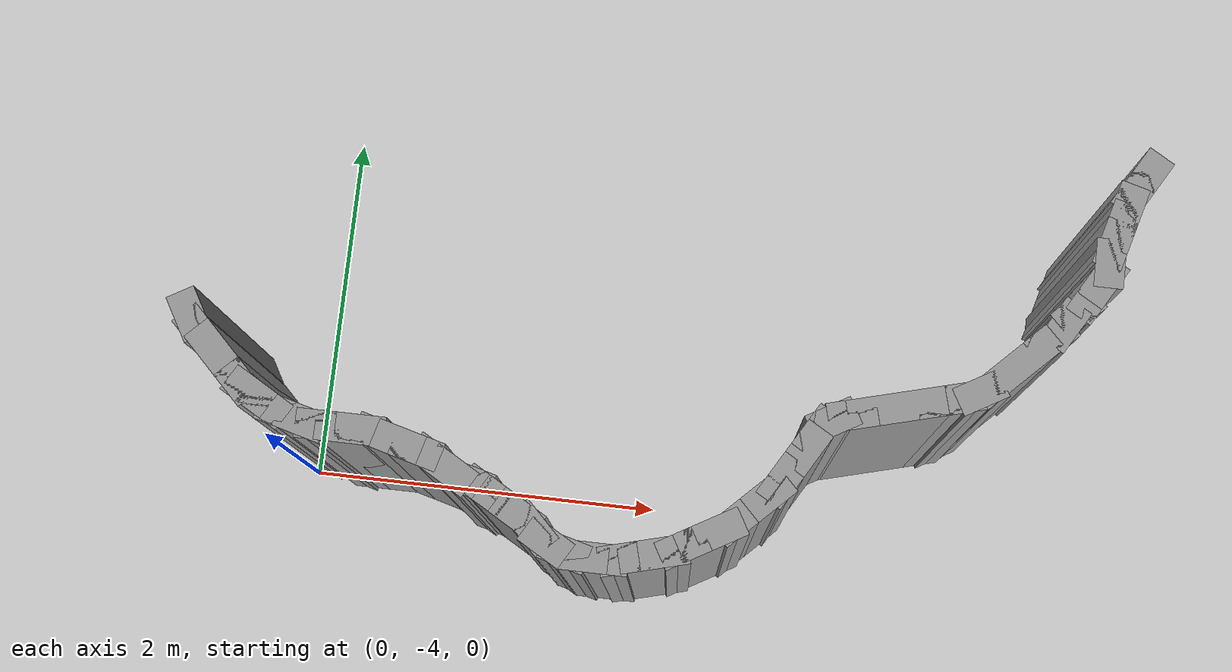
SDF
<sdf version="1.7">
 <world name="default">
  <model name="ground_plane">
   <static>1</static>
   <link name="link">
    <collision name="collision">
     <geometry><plane><normal>0 0 1</normal><size>100 100</size></plane></geometry>
     <surface>
      <contact><collide_bitmask>65535</collide_bitmask></contact>
      <friction><ode><mu>100</mu><mu2>50</mu2></ode></friction>
     </surface>
    </collision>
    <visual name="visual">
     <cast_shadows>0</cast_shadows>
     <geometry><plane><normal>0 0 1</normal><size>100 100</size></plane></geometry>
     <material>
      <script><uri>file://media/materials/scripts/gazebo.material</uri><name>Gazebo/Grey</name></script>
     </material>
    </visual>
   </link>
  </model>
  <model name="pool11">
   <pose>1.69068 -1.09805 0 0 -0 0</pose>
   <link name="Wall_100">
    <collision name="Wall_100_Collision">
     <geometry><box><size>0.25 0.15 2.5</size></box></geometry>
     <pose>0 0 1.25 0 -0 0</pose>
    </collision>
    <visual name="Wall_100_Visual">
     <pose>0 0 1.25 0 -0 0</pose>
     <geometry><box><size>0.25 0.15 2.5</size></box></geometry>
     <material>
      <script><uri>file://media/materials/scripts/gazebo.material</uri><name>Gazebo/Grey</name></script>
      <ambient>1 1 1 1</ambient>
     </material>
     <meta><layer>0</layer></meta>
    </visual>
    <pose>2.29035 -1.96159 0 0 -0 1.0472</pose>
   </link>
   <link name="Wall_101">
    <collision name="Wall_101_Collision">
     <geometry><box><size>0.25 0.15 2.5</size></box></geometry>
     <pose>0 0 1.25 0 -0 0</pose>
    </collision>
    <visual name="Wall_101_Visual">
     <pose>0 0 1.25 0 -0 0</pose>
     <geometry><box><size>0.25 0.15 2.5</size></box></geometry>
     <material>
      <script><uri>file://media/materials/scripts/gazebo.material</uri><name>Gazebo/Grey</name></script>
      <ambient>1 1 1 1</ambient>
     </material>
     <meta><layer>0</layer></meta>
    </visual>
    <pose>2.35071 -1.88293 0 0 -0 0.785398</pose>
   </link>
   <link name="Wall_102">
    <collision name="Wall_102_Collision">
     <geometry><box><size>0.25 0.15 2.5</size></box></geometry>
     <pose>0 0 1.25 0 -0 0</pose>
    </collision>
    <visual name="Wall_102_Visual">
     <pose>0 0 1.25 0 -0 0</pose>
     <geometry><box><size>0.25 0.15 2.5</size></box></geometry>
     <material>
      <script><uri>file://media/materials/scripts/gazebo.material</uri><name>Gazebo/Grey</name></script>
      <ambient>1 1 1 1</ambient>
     </material>
     <meta><layer>0</layer></meta>
    </visual>
    <pose>2.41106 -1.80428 0 0 -0 1.0472</pose>
   </link>
   <link name="Wall_103">
    <collision name="Wall_103_Collision">
     <geometry><box><size>0.25 0.15 2.5</size></box></geometry>
     <pose>0 0 1.25 0 -0 0</pose>
    </collision>
    <visual name="Wall_103_Visual">
     <pose>0 0 1.25 0 -0 0</pose>
     <geometry><box><size>0.25 0.15 2.5</size></box></geometry>
     <material>
      <script><uri>file://media/materials/scripts/gazebo.material</uri><name>Gazebo/Grey</name></script>
      <ambient>1 1 1 1</ambient>
     </material>
     <meta><layer>0</layer></meta>
    </visual>
    <pose>2.46106 -1.71768 0 0 -0 1.0472</pose>
   </link>
   <link name="Wall_104">
    <collision name="Wall_104_Collision">
     <geometry><box><size>0.25 0.15 2.5</size></box></geometry>
     <pose>0 0 1.25 0 -0 0</pose>
    </collision>
    <visual name="Wall_104_Visual">
     <pose>0 0 1.25 0 -0 0</pose>
     <geometry><box><size>0.25 0.15 2.5</size></box></geometry>
     <material>
      <script><uri>file://media/materials/scripts/gazebo.material</uri><name>Gazebo/Grey</name></script>
      <ambient>1 1 1 1</ambient>
     </material>
     <meta><layer>0</layer></meta>
    </visual>
    <pose>2.48606 -1.62437 0 0 -0 1.5708</pose>
   </link>
   <link name="Wall_105">
    <collision name="Wall_105_Collision">
     <geometry><box><size>0.25 0.15 2.5</size></box></geometry>
     <pose>0 0 1.25 0 -0 0</pose>
    </collision>
    <visual name="Wall_105_Visual">
     <pose>0 0 1.25 0 -0 0</pose>
     <geometry><box><size>0.25 0.15 2.5</size></box></geometry>
     <material>
      <script><uri>file://media/materials/scripts/gazebo.material</uri><name>Gazebo/Grey</name></script>
      <ambient>1 1 1 1</ambient>
     </material>
     <meta><layer>0</layer></meta>
    </visual>
    <pose>2.499 -1.52608 0 0 -0 1.309</pose>
   </link>
   <link name="Wall_106">
    <collision name="Wall_106_Collision">
     <geometry><box><size>0.25 0.15 2.5</size></box></geometry>
     <pose>0 0 1.25 0 -0 0</pose>
    </collision>
    <visual name="Wall_106_Visual">
     <pose>0 0 1.25 0 -0 0</pose>
     <geometry><box><size>0.25 0.15 2.5</size></box></geometry>
     <material>
      <script><uri>file://media/materials/scripts/gazebo.material</uri><name>Gazebo/Grey</name></script>
      <ambient>1 1 1 1</ambient>
     </material>
     <meta><layer>0</layer></meta>
    </visual>
    <pose>2.52489 -1.42948 0 0 -0 1.309</pose>
   </link>
   <link name="Wall_107">
    <collision name="Wall_107_Collision">
     <geometry><box><size>0.25 0.15 2.5</size></box></geometry>
     <pose>0 0 1.25 0 -0 0</pose>
    </collision>
    <visual name="Wall_107_Visual">
     <pose>0 0 1.25 0 -0 0</pose>
     <geometry><box><size>0.25 0.15 2.5</size></box></geometry>
     <material>
      <script><uri>file://media/materials/scripts/gazebo.material</uri><name>Gazebo/Grey</name></script>
      <ambient>1 1 1 1</ambient>
     </material>
     <meta><layer>0</layer></meta>
    </visual>
    <pose>2.55077 -1.33289 0 0 -0 1.309</pose>
   </link>
   <link name="Wall_108">
    <collision name="Wall_108_Collision">
     <geometry><box><size>0.25 0.15 2.5</size></box></geometry>
     <pose>0 0 1.25 0 -0 0</pose>
    </collision>
    <visual name="Wall_108_Visual">
     <pose>0 0 1.25 0 -0 0</pose>
     <geometry><box><size>0.25 0.15 2.5</size></box></geometry>
     <material>
      <script><uri>file://media/materials/scripts/gazebo.material</uri><name>Gazebo/Grey</name></script>
      <ambient>1 1 1 1</ambient>
     </material>
     <meta><layer>0</layer></meta>
    </visual>
    <pose>2.58871 -1.24129 0 0 -0 1.0472</pose>
   </link>
   <link name="Wall_109">
    <collision name="Wall_109_Collision">
     <geometry><box><size>0.25 0.15 2.5</size></box></geometry>
     <pose>0 0 1.25 0 -0 0</pose>
    </collision>
    <visual name="Wall_109_Visual">
     <pose>0 0 1.25 0 -0 0</pose>
     <geometry><box><size>0.25 0.15 2.5</size></box></geometry>
     <material>
      <script><uri>file://media/materials/scripts/gazebo.material</uri><name>Gazebo/Grey</name></script>
      <ambient>1 1 1 1</ambient>
     </material>
     <meta><layer>0</layer></meta>
    </visual>
    <pose>2.63871 -1.15469 0 0 -0 1.0472</pose>
   </link>
   <link name="Wall_53">
    <collision name="Wall_53_Collision">
     <geometry><box><size>0.25 0.15 2.5</size></box></geometry>
     <pose>0 0 1.25 0 -0 0</pose>
    </collision>
    <visual name="Wall_53_Visual">
     <pose>0 0 1.25 0 -0 0</pose>
     <geometry><box><size>0.25 0.15 2.5</size></box></geometry>
     <material>
      <script><uri>file://media/materials/scripts/gazebo.material</uri><name>Gazebo/Grey</name></script>
      <ambient>1 1 1 1</ambient>
     </material>
     <meta><layer>0</layer></meta>
    </visual>
    <pose>-2.06314 -2.39948 0 0 -0 -1.0472</pose>
   </link>
   <link name="Wall_54">
    <collision name="Wall_54_Collision">
     <geometry><box><size>0.25 0.15 2.5</size></box></geometry>
     <pose>0 0 1.25 0 -0 0</pose>
    </collision>
    <visual name="Wall_54_Visual">
     <pose>0 0 1.25 0 -0 0</pose>
     <geometry><box><size>0.25 0.15 2.5</size></box></geometry>
     <material>
      <script><uri>file://media/materials/scripts/gazebo.material</uri><name>Gazebo/Grey</name></script>
      <ambient>1 1 1 1</ambient>
     </material>
     <meta><layer>0</layer></meta>
    </visual>
    <pose>-2.00278 -2.47814 0 0 -0 -0.785398</pose>
   </link>
   <link name="Wall_55">
    <collision name="Wall_55_Collision">
     <geometry><box><size>0.25 0.15 2.5</size></box></geometry>
     <pose>0 0 1.25 0 -0 0</pose>
    </collision>
    <visual name="Wall_55_Visual">
     <pose>0 0 1.25 0 -0 0</pose>
     <geometry><box><size>0.25 0.15 2.5</size></box></geometry>
     <material>
      <script><uri>file://media/materials/scripts/gazebo.material</uri><name>Gazebo/Grey</name></script>
      <ambient>1 1 1 1</ambient>
     </material>
     <meta><layer>0</layer></meta>
    </visual>
    <pose>-1.93207 -2.54885 0 0 -0 -0.785398</pose>
   </link>
   <link name="Wall_56">
    <collision name="Wall_56_Collision">
     <geometry><box><size>0.25 0.15 2.5</size></box></geometry>
     <pose>0 0 1.25 0 -0 0</pose>
    </collision>
    <visual name="Wall_56_Visual">
     <pose>0 0 1.25 0 -0 0</pose>
     <geometry><box><size>0.25 0.15 2.5</size></box></geometry>
     <material>
      <script><uri>file://media/materials/scripts/gazebo.material</uri><name>Gazebo/Grey</name></script>
      <ambient>1 1 1 1</ambient>
     </material>
     <meta><layer>0</layer></meta>
    </visual>
    <pose>-1.86136 -2.61956 0 0 -0 -0.785398</pose>
   </link>
   <link name="Wall_57">
    <collision name="Wall_57_Collision">
     <geometry><box><size>0.25 0.15 2.5</size></box></geometry>
     <pose>0 0 1.25 0 -0 0</pose>
    </collision>
    <visual name="Wall_57_Visual">
     <pose>0 0 1.25 0 -0 0</pose>
     <geometry><box><size>0.25 0.15 2.5</size></box></geometry>
     <material>
      <script><uri>file://media/materials/scripts/gazebo.material</uri><name>Gazebo/Grey</name></script>
      <ambient>1 1 1 1</ambient>
     </material>
     <meta><layer>0</layer></meta>
    </visual>
    <pose>-1.79065 -2.69027 0 0 -0 -0.785398</pose>
   </link>
   <link name="Wall_58">
    <collision name="Wall_58_Collision">
     <geometry><box><size>0.25 0.15 2.5</size></box></geometry>
     <pose>0 0 1.25 0 -0 0</pose>
    </collision>
    <visual name="Wall_58_Visual">
     <pose>0 0 1.25 0 -0 0</pose>
     <geometry><box><size>0.25 0.15 2.5</size></box></geometry>
     <material>
      <script><uri>file://media/materials/scripts/gazebo.material</uri><name>Gazebo/Grey</name></script>
      <ambient>1 1 1 1</ambient>
     </material>
     <meta><layer>0</layer></meta>
    </visual>
    <pose>-1.712 -2.75063 0 0 -0 -0.523599</pose>
   </link>
   <link name="Wall_59">
    <collision name="Wall_59_Collision">
     <geometry><box><size>0.25 0.15 2.5</size></box></geometry>
     <pose>0 0 1.25 0 -0 0</pose>
    </collision>
    <visual name="Wall_59_Visual">
     <pose>0 0 1.25 0 -0 0</pose>
     <geometry><box><size>0.25 0.15 2.5</size></box></geometry>
     <material>
      <script><uri>file://media/materials/scripts/gazebo.material</uri><name>Gazebo/Grey</name></script>
      <ambient>1 1 1 1</ambient>
     </material>
     <meta><layer>0</layer></meta>
    </visual>
    <pose>-1.62539 -2.80063 0 0 -0 -0.523599</pose>
   </link>
   <link name="Wall_60">
    <collision name="Wall_60_Collision">
     <geometry><box><size>0.25 0.15 2.5</size></box></geometry>
     <pose>0 0 1.25 0 -0 0</pose>
    </collision>
    <visual name="Wall_60_Visual">
     <pose>0 0 1.25 0 -0 0</pose>
     <geometry><box><size>0.25 0.15 2.5</size></box></geometry>
     <material>
      <script><uri>file://media/materials/scripts/gazebo.material</uri><name>Gazebo/Grey</name></script>
      <ambient>1 1 1 1</ambient>
     </material>
     <meta><layer>0</layer></meta>
    </visual>
    <pose>-1.5338 -2.83857 0 0 -0 -0.261799</pose>
   </link>
   <link name="Wall_61">
    <collision name="Wall_61_Collision">
     <geometry><box><size>0.25 0.15 2.5</size></box></geometry>
     <pose>0 0 1.25 0 -0 0</pose>
    </collision>
    <visual name="Wall_61_Visual">
     <pose>0 0 1.25 0 -0 0</pose>
     <geometry><box><size>0.25 0.15 2.5</size></box></geometry>
     <material>
      <script><uri>file://media/materials/scripts/gazebo.material</uri><name>Gazebo/Grey</name></script>
      <ambient>1 1 1 1</ambient>
     </material>
     <meta><layer>0</layer></meta>
    </visual>
    <pose>-1.4372 -2.86445 0 0 -0 -0.261799</pose>
   </link>
   <link name="Wall_62">
    <collision name="Wall_62_Collision">
     <geometry><box><size>0.25 0.15 2.5</size></box></geometry>
     <pose>0 0 1.25 0 -0 0</pose>
    </collision>
    <visual name="Wall_62_Visual">
     <pose>0 0 1.25 0 -0 0</pose>
     <geometry><box><size>0.25 0.15 2.5</size></box></geometry>
     <material>
      <script><uri>file://media/materials/scripts/gazebo.material</uri><name>Gazebo/Grey</name></script>
      <ambient>1 1 1 1</ambient>
     </material>
     <meta><layer>0</layer></meta>
    </visual>
    <pose>-1.33891 -2.87739 0 0 -0 0</pose>
   </link>
   <link name="Wall_63">
    <collision name="Wall_63_Collision">
     <geometry><box><size>0.25 0.15 2.5</size></box></geometry>
     <pose>0 0 1.25 0 -0 0</pose>
    </collision>
    <visual name="Wall_63_Visual">
     <pose>0 0 1.25 0 -0 0</pose>
     <geometry><box><size>0.25 0.15 2.5</size></box></geometry>
     <material>
      <script><uri>file://media/materials/scripts/gazebo.material</uri><name>Gazebo/Grey</name></script>
      <ambient>1 1 1 1</ambient>
     </material>
     <meta><layer>0</layer></meta>
    </visual>
    <pose>-1.23891 -2.87739 0 0 -0 0</pose>
   </link>
   <link name="Wall_64">
    <collision name="Wall_64_Collision">
     <geometry><box><size>0.25 0.15 2.5</size></box></geometry>
     <pose>0 0 1.25 0 -0 0</pose>
    </collision>
    <visual name="Wall_64_Visual">
     <pose>0 0 1.25 0 -0 0</pose>
     <geometry><box><size>0.25 0.15 2.5</size></box></geometry>
     <material>
      <script><uri>file://media/materials/scripts/gazebo.material</uri><name>Gazebo/Grey</name></script>
      <ambient>1 1 1 1</ambient>
     </material>
     <meta><layer>0</layer></meta>
    </visual>
    <pose>-1.13891 -2.87739 0 0 -0 0</pose>
   </link>
   <link name="Wall_65">
    <collision name="Wall_65_Collision">
     <geometry><box><size>0.25 0.15 2.5</size></box></geometry>
     <pose>0 0 1.25 0 -0 0</pose>
    </collision>
    <visual name="Wall_65_Visual">
     <pose>0 0 1.25 0 -0 0</pose>
     <geometry><box><size>0.25 0.15 2.5</size></box></geometry>
     <material>
      <script><uri>file://media/materials/scripts/gazebo.material</uri><name>Gazebo/Grey</name></script>
      <ambient>1 1 1 1</ambient>
     </material>
     <meta><layer>0</layer></meta>
    </visual>
    <pose>-1.04061 -2.89033 0 0 -0 -0.261799</pose>
   </link>
   <link name="Wall_66">
    <collision name="Wall_66_Collision">
     <geometry><box><size>0.25 0.15 2.5</size></box></geometry>
     <pose>0 0 1.25 0 -0 0</pose>
    </collision>
    <visual name="Wall_66_Visual">
     <pose>0 0 1.25 0 -0 0</pose>
     <geometry><box><size>0.25 0.15 2.5</size></box></geometry>
     <material>
      <script><uri>file://media/materials/scripts/gazebo.material</uri><name>Gazebo/Grey</name></script>
      <ambient>1 1 1 1</ambient>
     </material>
     <meta><layer>0</layer></meta>
    </visual>
    <pose>-0.944019 -2.91621 0 0 -0 -0.261799</pose>
   </link>
   <link name="Wall_67">
    <collision name="Wall_67_Collision">
     <geometry><box><size>0.25 0.15 2.5</size></box></geometry>
     <pose>0 0 1.25 0 -0 0</pose>
    </collision>
    <visual name="Wall_67_Visual">
     <pose>0 0 1.25 0 -0 0</pose>
     <geometry><box><size>0.25 0.15 2.5</size></box></geometry>
     <material>
      <script><uri>file://media/materials/scripts/gazebo.material</uri><name>Gazebo/Grey</name></script>
      <ambient>1 1 1 1</ambient>
     </material>
     <meta><layer>0</layer></meta>
    </visual>
    <pose>-0.847426 -2.9421 0 0 -0 -0.261799</pose>
   </link>
   <link name="Wall_68">
    <collision name="Wall_68_Collision">
     <geometry><box><size>0.25 0.15 2.5</size></box></geometry>
     <pose>0 0 1.25 0 -0 0</pose>
    </collision>
    <visual name="Wall_68_Visual">
     <pose>0 0 1.25 0 -0 0</pose>
     <geometry><box><size>0.25 0.15 2.5</size></box></geometry>
     <material>
      <script><uri>file://media/materials/scripts/gazebo.material</uri><name>Gazebo/Grey</name></script>
      <ambient>1 1 1 1</ambient>
     </material>
     <meta><layer>0</layer></meta>
    </visual>
    <pose>-0.755829 -2.98004 0 0 -0 -0.523599</pose>
   </link>
   <link name="Wall_69">
    <collision name="Wall_69_Collision">
     <geometry><box><size>0.25 0.15 2.5</size></box></geometry>
     <pose>0 0 1.25 0 -0 0</pose>
    </collision>
    <visual name="Wall_69_Visual">
     <pose>0 0 1.25 0 -0 0</pose>
     <geometry><box><size>0.25 0.15 2.5</size></box></geometry>
     <material>
      <script><uri>file://media/materials/scripts/gazebo.material</uri><name>Gazebo/Grey</name></script>
      <ambient>1 1 1 1</ambient>
     </material>
     <meta><layer>0</layer></meta>
    </visual>
    <pose>-0.669226 -3.03003 0 0 -0 -0.523599</pose>
   </link>
   <link name="Wall_70">
    <collision name="Wall_70_Collision">
     <geometry><box><size>0.25 0.15 2.5</size></box></geometry>
     <pose>0 0 1.25 0 -0 0</pose>
    </collision>
    <visual name="Wall_70_Visual">
     <pose>0 0 1.25 0 -0 0</pose>
     <geometry><box><size>0.25 0.15 2.5</size></box></geometry>
     <material>
      <script><uri>file://media/materials/scripts/gazebo.material</uri><name>Gazebo/Grey</name></script>
      <ambient>1 1 1 1</ambient>
     </material>
     <meta><layer>0</layer></meta>
    </visual>
    <pose>-0.577629 -3.06798 0 0 -0 -0.261799</pose>
   </link>
   <link name="Wall_71">
    <collision name="Wall_71_Collision">
     <geometry><box><size>0.25 0.15 2.5</size></box></geometry>
     <pose>0 0 1.25 0 -0 0</pose>
    </collision>
    <visual name="Wall_71_Visual">
     <pose>0 0 1.25 0 -0 0</pose>
     <geometry><box><size>0.25 0.15 2.5</size></box></geometry>
     <material>
      <script><uri>file://media/materials/scripts/gazebo.material</uri><name>Gazebo/Grey</name></script>
      <ambient>1 1 1 1</ambient>
     </material>
     <meta><layer>0</layer></meta>
    </visual>
    <pose>-0.486031 -3.10592 0 0 -0 -0.523599</pose>
   </link>
   <link name="Wall_72">
    <collision name="Wall_72_Collision">
     <geometry><box><size>0.25 0.15 2.5</size></box></geometry>
     <pose>0 0 1.25 0 -0 0</pose>
    </collision>
    <visual name="Wall_72_Visual">
     <pose>0 0 1.25 0 -0 0</pose>
     <geometry><box><size>0.25 0.15 2.5</size></box></geometry>
     <material>
      <script><uri>file://media/materials/scripts/gazebo.material</uri><name>Gazebo/Grey</name></script>
      <ambient>1 1 1 1</ambient>
     </material>
     <meta><layer>0</layer></meta>
    </visual>
    <pose>-0.399429 -3.15592 0 0 -0 -0.523599</pose>
   </link>
   <link name="Wall_73">
    <collision name="Wall_73_Collision">
     <geometry><box><size>0.25 0.15 2.5</size></box></geometry>
     <pose>0 0 1.25 0 -0 0</pose>
    </collision>
    <visual name="Wall_73_Visual">
     <pose>0 0 1.25 0 -0 0</pose>
     <geometry><box><size>0.25 0.15 2.5</size></box></geometry>
     <material>
      <script><uri>file://media/materials/scripts/gazebo.material</uri><name>Gazebo/Grey</name></script>
      <ambient>1 1 1 1</ambient>
     </material>
     <meta><layer>0</layer></meta>
    </visual>
    <pose>-0.312826 -3.20592 0 0 -0 -0.523599</pose>
   </link>
   <link name="Wall_74">
    <collision name="Wall_74_Collision">
     <geometry><box><size>0.25 0.15 2.5</size></box></geometry>
     <pose>0 0 1.25 0 -0 0</pose>
    </collision>
    <visual name="Wall_74_Visual">
     <pose>0 0 1.25 0 -0 0</pose>
     <geometry><box><size>0.25 0.15 2.5</size></box></geometry>
     <material>
      <script><uri>file://media/materials/scripts/gazebo.material</uri><name>Gazebo/Grey</name></script>
      <ambient>1 1 1 1</ambient>
     </material>
     <meta><layer>0</layer></meta>
    </visual>
    <pose>-0.234169 -3.26627 0 0 -0 -0.785398</pose>
   </link>
   <link name="Wall_75">
    <collision name="Wall_75_Collision">
     <geometry><box><size>0.25 0.15 2.5</size></box></geometry>
     <pose>0 0 1.25 0 -0 0</pose>
    </collision>
    <visual name="Wall_75_Visual">
     <pose>0 0 1.25 0 -0 0</pose>
     <geometry><box><size>0.25 0.15 2.5</size></box></geometry>
     <material>
      <script><uri>file://media/materials/scripts/gazebo.material</uri><name>Gazebo/Grey</name></script>
      <ambient>1 1 1 1</ambient>
     </material>
     <meta><layer>0</layer></meta>
    </visual>
    <pose>-0.155513 -3.32663 0 0 -0 -0.523599</pose>
   </link>
   <link name="Wall_76">
    <collision name="Wall_76_Collision">
     <geometry><box><size>0.25 0.15 2.5</size></box></geometry>
     <pose>0 0 1.25 0 -0 0</pose>
    </collision>
    <visual name="Wall_76_Visual">
     <pose>0 0 1.25 0 -0 0</pose>
     <geometry><box><size>0.25 0.15 2.5</size></box></geometry>
     <material>
      <script><uri>file://media/materials/scripts/gazebo.material</uri><name>Gazebo/Grey</name></script>
      <ambient>1 1 1 1</ambient>
     </material>
     <meta><layer>0</layer></meta>
    </visual>
    <pose>-0.063915 -3.36457 0 0 -0 -0.261799</pose>
   </link>
   <link name="Wall_77">
    <collision name="Wall_77_Collision">
     <geometry><box><size>0.25 0.15 2.5</size></box></geometry>
     <pose>0 0 1.25 0 -0 0</pose>
    </collision>
    <visual name="Wall_77_Visual">
     <pose>0 0 1.25 0 -0 0</pose>
     <geometry><box><size>0.25 0.15 2.5</size></box></geometry>
     <material>
      <script><uri>file://media/materials/scripts/gazebo.material</uri><name>Gazebo/Grey</name></script>
      <ambient>1 1 1 1</ambient>
     </material>
     <meta><layer>0</layer></meta>
    </visual>
    <pose>0.034381 -3.37751 0 0 -0 0</pose>
   </link>
   <link name="Wall_78">
    <collision name="Wall_78_Collision">
     <geometry><box><size>0.25 0.15 2.5</size></box></geometry>
     <pose>0 0 1.25 0 -0 0</pose>
    </collision>
    <visual name="Wall_78_Visual">
     <pose>0 0 1.25 0 -0 0</pose>
     <geometry><box><size>0.25 0.15 2.5</size></box></geometry>
     <material>
      <script><uri>file://media/materials/scripts/gazebo.material</uri><name>Gazebo/Grey</name></script>
      <ambient>1 1 1 1</ambient>
     </material>
     <meta><layer>0</layer></meta>
    </visual>
    <pose>0.134381 -3.37751 0 0 -0 0</pose>
   </link>
   <link name="Wall_79">
    <collision name="Wall_79_Collision">
     <geometry><box><size>0.25 0.15 2.5</size></box></geometry>
     <pose>0 0 1.25 0 -0 0</pose>
    </collision>
    <visual name="Wall_79_Visual">
     <pose>0 0 1.25 0 -0 0</pose>
     <geometry><box><size>0.25 0.15 2.5</size></box></geometry>
     <material>
      <script><uri>file://media/materials/scripts/gazebo.material</uri><name>Gazebo/Grey</name></script>
      <ambient>1 1 1 1</ambient>
     </material>
     <meta><layer>0</layer></meta>
    </visual>
    <pose>0.232677 -3.36457 0 0 -0 0.261799</pose>
   </link>
   <link name="Wall_80">
    <collision name="Wall_80_Collision">
     <geometry><box><size>0.25 0.15 2.5</size></box></geometry>
     <pose>0 0 1.25 0 -0 0</pose>
    </collision>
    <visual name="Wall_80_Visual">
     <pose>0 0 1.25 0 -0 0</pose>
     <geometry><box><size>0.25 0.15 2.5</size></box></geometry>
     <material>
      <script><uri>file://media/materials/scripts/gazebo.material</uri><name>Gazebo/Grey</name></script>
      <ambient>1 1 1 1</ambient>
     </material>
     <meta><layer>0</layer></meta>
    </visual>
    <pose>0.32927 -3.33869 0 0 -0 0.261799</pose>
   </link>
   <link name="Wall_81">
    <collision name="Wall_81_Collision">
     <geometry><box><size>0.25 0.15 2.5</size></box></geometry>
     <pose>0 0 1.25 0 -0 0</pose>
    </collision>
    <visual name="Wall_81_Visual">
     <pose>0 0 1.25 0 -0 0</pose>
     <geometry><box><size>0.25 0.15 2.5</size></box></geometry>
     <material>
      <script><uri>file://media/materials/scripts/gazebo.material</uri><name>Gazebo/Grey</name></script>
      <ambient>1 1 1 1</ambient>
     </material>
     <meta><layer>0</layer></meta>
    </visual>
    <pose>0.425862 -3.3128 0 0 -0 0.261799</pose>
   </link>
   <link name="Wall_82">
    <collision name="Wall_82_Collision">
     <geometry><box><size>0.25 0.15 2.5</size></box></geometry>
     <pose>0 0 1.25 0 -0 0</pose>
    </collision>
    <visual name="Wall_82_Visual">
     <pose>0 0 1.25 0 -0 0</pose>
     <geometry><box><size>0.25 0.15 2.5</size></box></geometry>
     <material>
      <script><uri>file://media/materials/scripts/gazebo.material</uri><name>Gazebo/Grey</name></script>
      <ambient>1 1 1 1</ambient>
     </material>
     <meta><layer>0</layer></meta>
    </visual>
    <pose>0.51746 -3.27486 0 0 -0 0.523599</pose>
   </link>
   <link name="Wall_83">
    <collision name="Wall_83_Collision">
     <geometry><box><size>0.25 0.15 2.5</size></box></geometry>
     <pose>0 0 1.25 0 -0 0</pose>
    </collision>
    <visual name="Wall_83_Visual">
     <pose>0 0 1.25 0 -0 0</pose>
     <geometry><box><size>0.25 0.15 2.5</size></box></geometry>
     <material>
      <script><uri>file://media/materials/scripts/gazebo.material</uri><name>Gazebo/Grey</name></script>
      <ambient>1 1 1 1</ambient>
     </material>
     <meta><layer>0</layer></meta>
    </visual>
    <pose>0.604063 -3.22486 0 0 -0 0.523599</pose>
   </link>
   <link name="Wall_84">
    <collision name="Wall_84_Collision">
     <geometry><box><size>0.25 0.15 2.5</size></box></geometry>
     <pose>0 0 1.25 0 -0 0</pose>
    </collision>
    <visual name="Wall_84_Visual">
     <pose>0 0 1.25 0 -0 0</pose>
     <geometry><box><size>0.25 0.15 2.5</size></box></geometry>
     <material>
      <script><uri>file://media/materials/scripts/gazebo.material</uri><name>Gazebo/Grey</name></script>
      <ambient>1 1 1 1</ambient>
     </material>
     <meta><layer>0</layer></meta>
    </visual>
    <pose>0.690665 -3.17486 0 0 -0 0.523599</pose>
   </link>
   <link name="Wall_85">
    <collision name="Wall_85_Collision">
     <geometry><box><size>0.25 0.15 2.5</size></box></geometry>
     <pose>0 0 1.25 0 -0 0</pose>
    </collision>
    <visual name="Wall_85_Visual">
     <pose>0 0 1.25 0 -0 0</pose>
     <geometry><box><size>0.25 0.15 2.5</size></box></geometry>
     <material>
      <script><uri>file://media/materials/scripts/gazebo.material</uri><name>Gazebo/Grey</name></script>
      <ambient>1 1 1 1</ambient>
     </material>
     <meta><layer>0</layer></meta>
    </visual>
    <pose>0.769322 -3.11451 0 0 -0 0.785398</pose>
   </link>
   <link name="Wall_86">
    <collision name="Wall_86_Collision">
     <geometry><box><size>0.25 0.15 2.5</size></box></geometry>
     <pose>0 0 1.25 0 -0 0</pose>
    </collision>
    <visual name="Wall_86_Visual">
     <pose>0 0 1.25 0 -0 0</pose>
     <geometry><box><size>0.25 0.15 2.5</size></box></geometry>
     <material>
      <script><uri>file://media/materials/scripts/gazebo.material</uri><name>Gazebo/Grey</name></script>
      <ambient>1 1 1 1</ambient>
     </material>
     <meta><layer>0</layer></meta>
    </visual>
    <pose>0.840032 -3.0438 0 0 -0 0.785398</pose>
   </link>
   <link name="Wall_87">
    <collision name="Wall_87_Collision">
     <geometry><box><size>0.25 0.15 2.5</size></box></geometry>
     <pose>0 0 1.25 0 -0 0</pose>
    </collision>
    <visual name="Wall_87_Visual">
     <pose>0 0 1.25 0 -0 0</pose>
     <geometry><box><size>0.25 0.15 2.5</size></box></geometry>
     <material>
      <script><uri>file://media/materials/scripts/gazebo.material</uri><name>Gazebo/Grey</name></script>
      <ambient>1 1 1 1</ambient>
     </material>
     <meta><layer>0</layer></meta>
    </visual>
    <pose>0.910743 -2.97309 0 0 -0 0.785398</pose>
   </link>
   <link name="Wall_88">
    <collision name="Wall_88_Collision">
     <geometry><box><size>0.25 0.15 2.5</size></box></geometry>
     <pose>0 0 1.25 0 -0 0</pose>
    </collision>
    <visual name="Wall_88_Visual">
     <pose>0 0 1.25 0 -0 0</pose>
     <geometry><box><size>0.25 0.15 2.5</size></box></geometry>
     <material>
      <script><uri>file://media/materials/scripts/gazebo.material</uri><name>Gazebo/Grey</name></script>
      <ambient>1 1 1 1</ambient>
     </material>
     <meta><layer>0</layer></meta>
    </visual>
    <pose>0.971098 -2.89443 0 0 -0 1.0472</pose>
   </link>
   <link name="Wall_89">
    <collision name="Wall_89_Collision">
     <geometry><box><size>0.25 0.15 2.5</size></box></geometry>
     <pose>0 0 1.25 0 -0 0</pose>
    </collision>
    <visual name="Wall_89_Visual">
     <pose>0 0 1.25 0 -0 0</pose>
     <geometry><box><size>0.25 0.15 2.5</size></box></geometry>
     <material>
      <script><uri>file://media/materials/scripts/gazebo.material</uri><name>Gazebo/Grey</name></script>
      <ambient>1 1 1 1</ambient>
     </material>
     <meta><layer>0</layer></meta>
    </visual>
    <pose>1.0211 -2.80783 0 0 -0 1.0472</pose>
   </link>
   <link name="Wall_90">
    <collision name="Wall_90_Collision">
     <geometry><box><size>0.25 0.15 2.5</size></box></geometry>
     <pose>0 0 1.25 0 -0 0</pose>
    </collision>
    <visual name="Wall_90_Visual">
     <pose>0 0 1.25 0 -0 0</pose>
     <geometry><box><size>0.25 0.15 2.5</size></box></geometry>
     <material>
      <script><uri>file://media/materials/scripts/gazebo.material</uri><name>Gazebo/Grey</name></script>
      <ambient>1 1 1 1</ambient>
     </material>
     <meta><layer>0</layer></meta>
    </visual>
    <pose>1.0711 -2.72123 0 0 -0 1.0472</pose>
   </link>
   <link name="Wall_91">
    <collision name="Wall_91_Collision">
     <geometry><box><size>0.25 0.15 2.5</size></box></geometry>
     <pose>0 0 1.25 0 -0 0</pose>
    </collision>
    <visual name="Wall_91_Visual">
     <pose>0 0 1.25 0 -0 0</pose>
     <geometry><box><size>0.25 0.15 2.5</size></box></geometry>
     <material>
      <script><uri>file://media/materials/scripts/gazebo.material</uri><name>Gazebo/Grey</name></script>
      <ambient>1 1 1 1</ambient>
     </material>
     <meta><layer>0</layer></meta>
    </visual>
    <pose>1.1211 -2.63462 0 0 -0 1.0472</pose>
   </link>
   <link name="Wall_92">
    <collision name="Wall_92_Collision">
     <geometry><box><size>0.25 0.15 2.5</size></box></geometry>
     <pose>0 0 1.25 0 -0 0</pose>
    </collision>
    <visual name="Wall_92_Visual">
     <pose>0 0 1.25 0 -0 0</pose>
     <geometry><box><size>0.25 0.15 2.5</size></box></geometry>
     <material>
      <script><uri>file://media/materials/scripts/gazebo.material</uri><name>Gazebo/Grey</name></script>
      <ambient>1 1 1 1</ambient>
     </material>
     <meta><layer>0</layer></meta>
    </visual>
    <pose>1.1894 -2.56632 0 0 -0 0.523599</pose>
   </link>
   <link name="Wall_93">
    <collision name="Wall_93_Collision">
     <geometry><box><size>0.25 0.15 2.5</size></box></geometry>
     <pose>0 0 1.25 0 -0 0</pose>
    </collision>
    <visual name="Wall_93_Visual">
     <pose>0 0 1.25 0 -0 0</pose>
     <geometry><box><size>0.25 0.15 2.5</size></box></geometry>
     <material>
      <script><uri>file://media/materials/scripts/gazebo.material</uri><name>Gazebo/Grey</name></script>
      <ambient>1 1 1 1</ambient>
     </material>
     <meta><layer>0</layer></meta>
    </visual>
    <pose>1.281 -2.52838 0 0 -0 0.261799</pose>
   </link>
   <link name="Wall_94">
    <collision name="Wall_94_Collision">
     <geometry><box><size>0.5 0.15 2.5</size></box></geometry>
     <pose>0 0 1.25 0 -0 0</pose>
    </collision>
    <visual name="Wall_94_Visual">
     <pose>0 0 1.25 0 -0 0</pose>
     <geometry><box><size>0.5 0.15 2.5</size></box></geometry>
     <material>
      <script><uri>file://media/materials/scripts/gazebo.material</uri><name>Gazebo/Grey</name></script>
      <ambient>1 1 1 1</ambient>
     </material>
     <meta><layer>0</layer></meta>
    </visual>
    <pose>1.49833 -2.47015 0 0 -0 0.261799</pose>
   </link>
   <link name="Wall_95">
    <collision name="Wall_95_Collision">
     <geometry><box><size>0.25 0.15 2.5</size></box></geometry>
     <pose>0 0 1.25 0 -0 0</pose>
    </collision>
    <visual name="Wall_95_Visual">
     <pose>0 0 1.25 0 -0 0</pose>
     <geometry><box><size>0.25 0.15 2.5</size></box></geometry>
     <material>
      <script><uri>file://media/materials/scripts/gazebo.material</uri><name>Gazebo/Grey</name></script>
      <ambient>1 1 1 1</ambient>
     </material>
     <meta><layer>0</layer></meta>
    </visual>
    <pose>1.71566 -2.41191 0 0 -0 0.261799</pose>
   </link>
   <link name="Wall_96">
    <collision name="Wall_96_Collision">
     <geometry><box><size>0.25 0.15 2.5</size></box></geometry>
     <pose>0 0 1.25 0 -0 0</pose>
    </collision>
    <visual name="Wall_96_Visual">
     <pose>0 0 1.25 0 -0 0</pose>
     <geometry><box><size>0.25 0.15 2.5</size></box></geometry>
     <material>
      <script><uri>file://media/materials/scripts/gazebo.material</uri><name>Gazebo/Grey</name></script>
      <ambient>1 1 1 1</ambient>
     </material>
     <meta><layer>0</layer></meta>
    </visual>
    <pose>1.81226 -2.38603 0 0 -0 0.261799</pose>
   </link>
   <link name="Wall_97">
    <collision name="Wall_97_Collision">
     <geometry><box><size>0.25 0.15 2.5</size></box></geometry>
     <pose>0 0 1.25 0 -0 0</pose>
    </collision>
    <visual name="Wall_97_Visual">
     <pose>0 0 1.25 0 -0 0</pose>
     <geometry><box><size>0.25 0.15 2.5</size></box></geometry>
     <material>
      <script><uri>file://media/materials/scripts/gazebo.material</uri><name>Gazebo/Grey</name></script>
      <ambient>1 1 1 1</ambient>
     </material>
     <meta><layer>0</layer></meta>
    </visual>
    <pose>1.90385 -2.34809 0 0 -0 0.523599</pose>
   </link>
   <link name="Wall_98">
    <collision name="Wall_98_Collision">
     <geometry><box><size>0.5 0.15 2.5</size></box></geometry>
     <pose>0 0 1.25 0 -0 0</pose>
    </collision>
    <visual name="Wall_98_Visual">
     <pose>0 0 1.25 0 -0 0</pose>
     <geometry><box><size>0.5 0.15 2.5</size></box></geometry>
     <material>
      <script><uri>file://media/materials/scripts/gazebo.material</uri><name>Gazebo/Grey</name></script>
      <ambient>1 1 1 1</ambient>
     </material>
     <meta><layer>0</layer></meta>
    </visual>
    <pose>2.0709 -2.19935 0 0 -0 0.785398</pose>
   </link>
   <link name="Wall_99">
    <collision name="Wall_99_Collision">
     <geometry><box><size>0.25 0.15 2.5</size></box></geometry>
     <pose>0 0 1.25 0 -0 0</pose>
    </collision>
    <visual name="Wall_99_Visual">
     <pose>0 0 1.25 0 -0 0</pose>
     <geometry><box><size>0.25 0.15 2.5</size></box></geometry>
     <material>
      <script><uri>file://media/materials/scripts/gazebo.material</uri><name>Gazebo/Grey</name></script>
      <ambient>1 1 1 1</ambient>
     </material>
     <meta><layer>0</layer></meta>
    </visual>
    <pose>2.23 -2.04025 0 0 -0 0.785398</pose>
   </link>
   <static>1</static>
  </model>
 </world>
</sdf>
